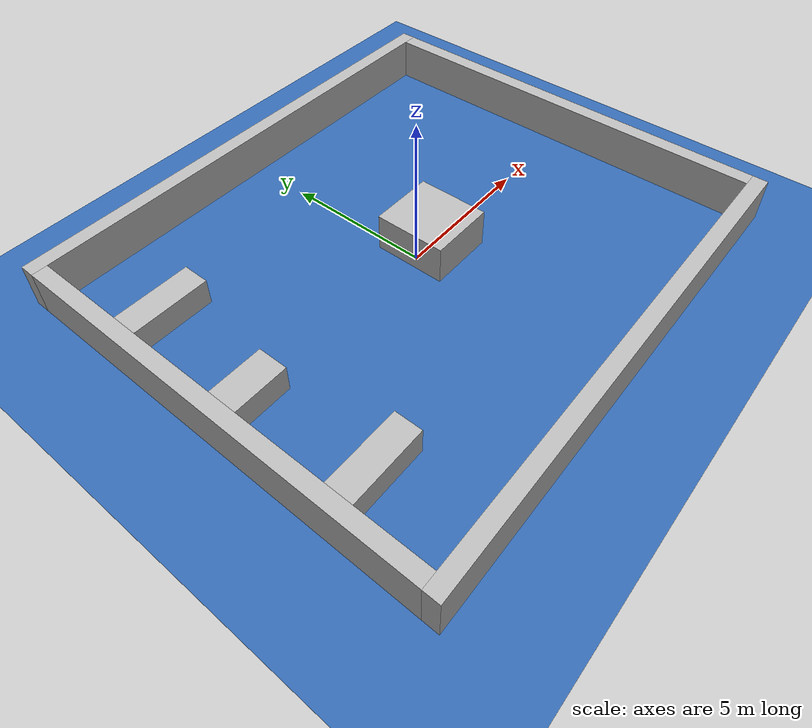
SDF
<?xml version="1.0"?>
<sdf version="1.10">
  <world name="dock_island">
    <plugin filename="gz-sim-physics-system" name="gz::sim::systems::Physics"/>
    <plugin filename="gz-sim-user-commands-system" name="gz::sim::systems::UserCommands"/>
    <plugin filename="gz-sim-scene-broadcaster-system" name="gz::sim::systems::SceneBroadcaster"/>
    <plugin filename="gz-sim-sensors-system" name="gz::sim::systems::Sensors">
      <render_engine>ogre2</render_engine>
    </plugin>
    <plugin filename="gz-sim-imu-system" name="gz::sim::systems::Imu"/>
    <plugin filename="gz-sim-navsat-system" name="gz::sim::systems::NavSat"/>
    <plugin filename="gz-sim-magnetometer-system" name="gz::sim::systems::Magnetometer"/>

    <physics type="ignored"><max_step_size>0.004</max_step_size><real_time_factor>1.0</real_time_factor><real_time_update_rate>250</real_time_update_rate></physics>
    <gravity>0 0 -9.80665</gravity>
    <light type="directional" name="sun">
      <pose>50 0 150 0 0 0</pose>
      <diffuse>1 1 1 1</diffuse>
      <specular>0.1 0.1 0.1 1</specular>
      <direction>0.3 0.3 -1</direction>
      <cast_shadows>false</cast_shadows>
    </light>
    <include><uri>model://water_surface</uri></include>
    <!-- The boat starts 0.17 m beyond the centre pier, pointing away. -->
    <model name="west_quay"><static>true</static><pose>-8.25 0 0.75 0 0 0</pose><link name="body"><collision name="collision"><geometry><box><size>0.5 14 1.5</size></box></geometry></collision><visual name="visual"><geometry><box><size>0.5 14 1.5</size></box></geometry></visual></link></model>
    <model name="east_wall"><static>true</static><pose>8.25 0 0.75 0 0 0</pose><link name="body"><collision name="collision"><geometry><box><size>0.5 14 1.5</size></box></geometry></collision><visual name="visual"><geometry><box><size>0.5 14 1.5</size></box></geometry></visual></link></model>
    <model name="north_wall"><static>true</static><pose>0 7.25 0.75 0 0 0</pose><link name="body"><collision name="collision"><geometry><box><size>17 0.5 1.5</size></box></geometry></collision><visual name="visual"><geometry><box><size>17 0.5 1.5</size></box></geometry></visual></link></model>
    <model name="south_wall"><static>true</static><pose>0 -7.25 0.75 0 0 0</pose><link name="body"><collision name="collision"><geometry><box><size>17 0.5 1.5</size></box></geometry></collision><visual name="visual"><geometry><box><size>17 0.5 1.5</size></box></geometry></visual></link></model>
    <model name="centre_pier"><static>true</static><pose>-7.125 0 0.45 0 0 0</pose><link name="body"><collision name="collision"><geometry><box><size>2.25 1.0 0.9</size></box></geometry></collision><visual name="visual"><geometry><box><size>2.25 1.0 0.9</size></box></geometry></visual></link></model>
    <model name="north_pier"><static>true</static><pose>-6.75 4.0 0.45 0 0 0</pose><link name="body"><collision name="collision"><geometry><box><size>3.0 0.9 0.9</size></box></geometry></collision><visual name="visual"><geometry><box><size>3.0 0.9 0.9</size></box></geometry></visual></link></model>
    <model name="south_pier"><static>true</static><pose>-6.75 -4.0 0.45 0 0 0</pose><link name="body"><collision name="collision"><geometry><box><size>3.0 0.9 0.9</size></box></geometry></collision><visual name="visual"><geometry><box><size>3.0 0.9 0.9</size></box></geometry></visual></link></model>
    <!-- The island blocks the straight eastbound line while leaving broad water on every side. -->
    <model name="central_island"><static>true</static><pose>0.75 0 0.65 0 0 0</pose><link name="body"><collision name="collision"><geometry><box><size>2.2 2.4 1.3</size></box></geometry></collision><visual name="visual"><geometry><box><size>2.2 2.4 1.3</size></box></geometry></visual></link></model>
  </world>
</sdf>

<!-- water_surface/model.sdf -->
<sdf version="1.6">
  <model name="water_surface">
    <static>true</static>

    <link name="water_surface_link">
      <visual name="water_surface_visual">
        <pose>0 0 -0.02 0 0 0</pose>
        <geometry>
          <box>
            <size>2000 2000 0.02</size>
          </box>
        </geometry>
        <material>
          <ambient>0.0 0.3 0.7 1.0</ambient>
          <diffuse>0.0 0.3 0.7 0.7</diffuse>
          <specular>0.1 0.1 0.1 1.0</specular>
        </material>
        <transparency>0.25</transparency>
      </visual>
    </link>
  </model>
</sdf>
